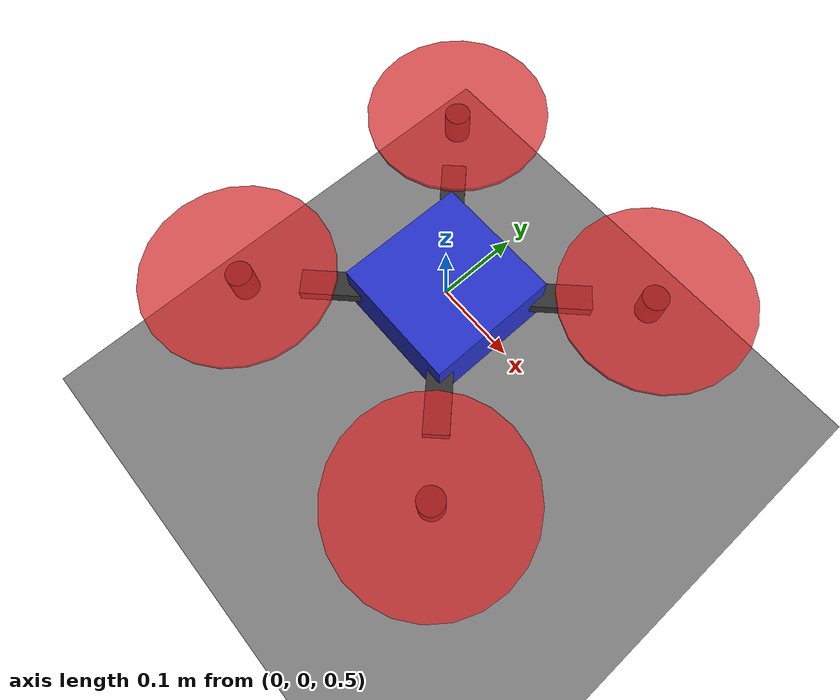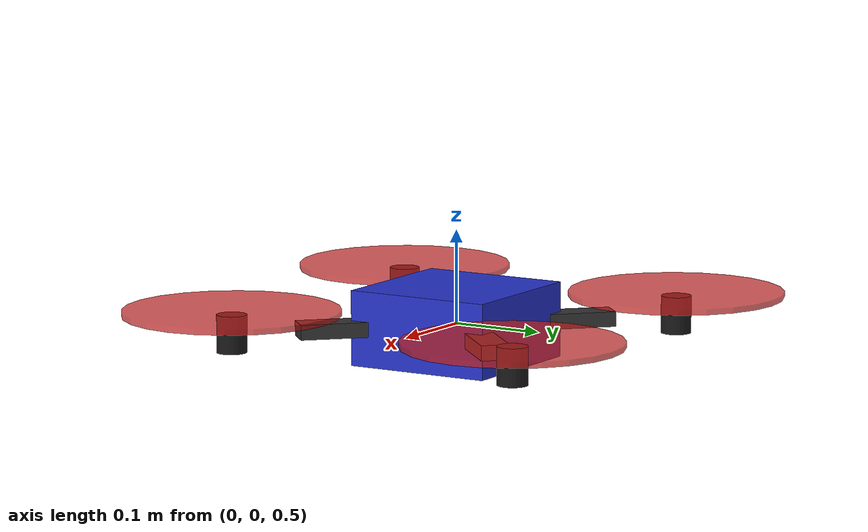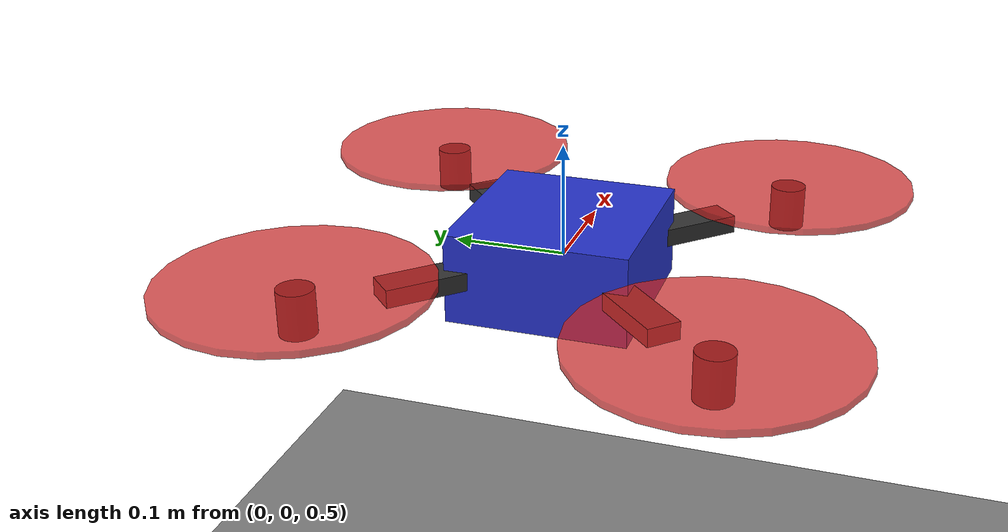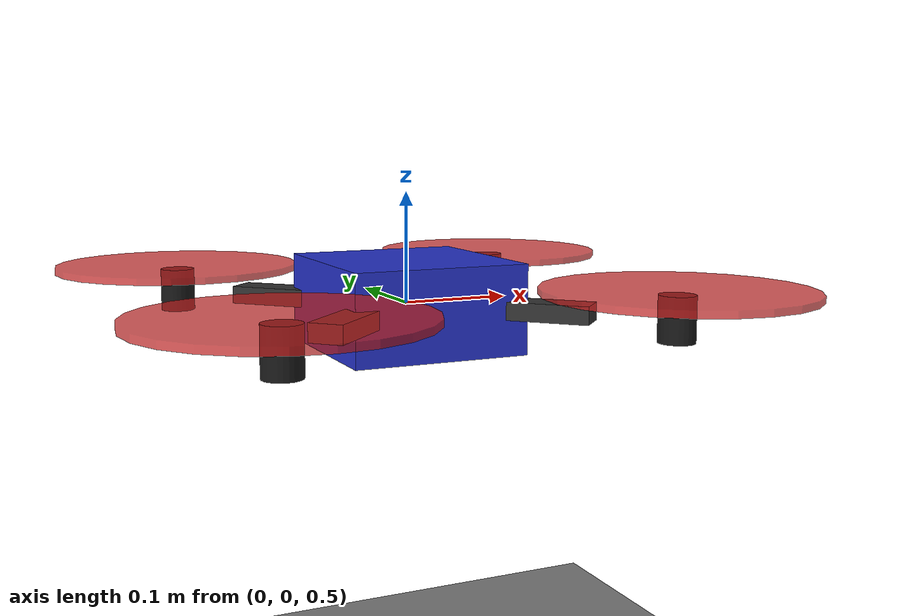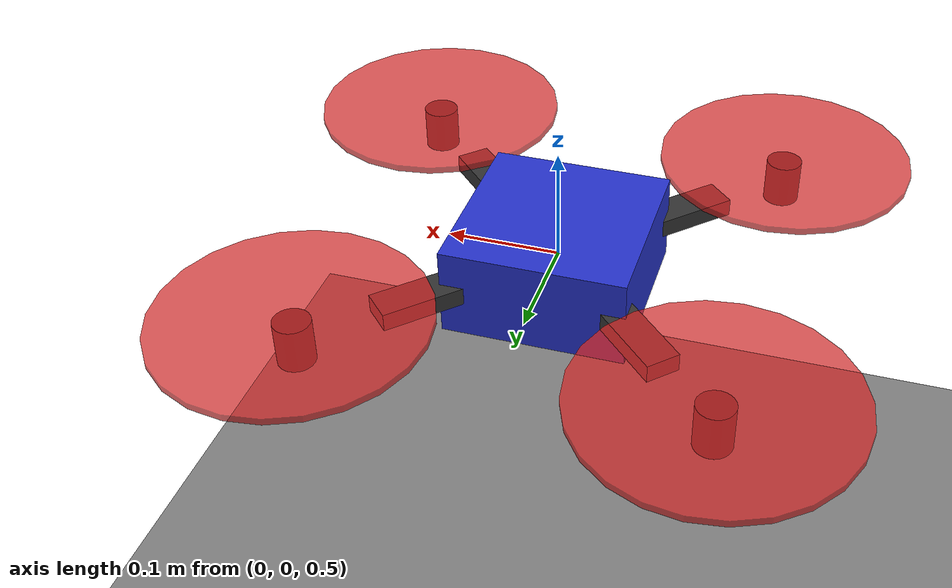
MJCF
<?xml version="1.0" ?>
<mujoco model="quadcopter">

  <!-- angle="radian": all euler/angle values in this file are in radians -->
  <compiler inertiafromgeom="auto" angle="radian"/>

  <option timestep="0.001" gravity="0 0 -9.81" integrator="RK4"/>

  <visual>
    <!-- Clean up the default scene: no contact forces, subtle shadows -->
    <headlight ambient="0.4 0.4 0.4" diffuse="0.6 0.6 0.6" specular="0.1 0.1 0.1"/>
    <map shadowclip="1" shadowscale="0.6"/>
    <quality shadowsize="2048"/>
    <global offwidth="1280" offheight="720"/>
  </visual>

  <asset>
    <!-- Simple gradient sky -->
    <texture name="skybox" type="skybox" builtin="gradient"
             rgb1="0.4 0.6 0.8" rgb2="0.8 0.9 1.0" width="512" height="512"/>
    <!-- Tiled ground -->
    <texture name="tex_ground" type="2d" builtin="checker"
             rgb1="0.45 0.45 0.45" rgb2="0.55 0.55 0.55" width="512" height="512"/>
    <material name="mat_ground" texture="tex_ground" texrepeat="8 8"
              specular="0.1" shininess="0.1" reflectance="0.0"/>
    <material name="mat_body"   rgba="0.15 0.20 0.80 1" specular="0.5" shininess="0.7"/>
    <material name="mat_arm"    rgba="0.20 0.20 0.20 1" specular="0.2"/>
    <material name="mat_motor"  rgba="0.10 0.10 0.10 1" specular="0.3"/>
    <material name="mat_rotor"  rgba="0.85 0.15 0.15 0.75" specular="0.2"/>
  </asset>

  <worldbody>
    <!-- Ground plane -->
    <geom name="ground" type="plane" size="20 20 0.1" material="mat_ground" pos="0 0 0"/>

    <body name="body" pos="0 0 0.5">
      <freejoint name="root"/>

      <!-- Central fuselage -->
      <inertial pos="0 0 0" mass="1.0" diaginertia="0.0082 0.0082 0.0149"/>
      <geom name="body_geom" type="box" size="0.08 0.08 0.04" material="mat_body"/>

      <!-- Arms (purely visual) -->
      <geom name="arm_fl_br" type="box" size="0.17 0.015 0.008" euler="0 0  0.7854" material="mat_arm"/>
      <geom name="arm_fr_bl" type="box" size="0.17 0.015 0.008" euler="0 0 -0.7854" material="mat_arm"/>

      <!-- ---- Front-Left motor + rotor ---- -->
      <body name="motor_fl" pos="-0.17 0.17 0.0">
        <inertial pos="0 0 0" mass="0.05" diaginertia="1e-4 1e-4 1e-4"/>
        <geom name="motor_fl_geom" type="cylinder" size="0.016 0.02" material="mat_motor"/>
        <!-- Rotor hinge: cosmetic spin only, driven by actuator -->
        <joint name="rotor_fl" type="hinge" axis="0 0 1" limited="false" damping="1e-4"/>
        <geom name="prop_fl" type="cylinder" size="0.115 0.003" pos="0 0 0.022" material="mat_rotor"/>
      </body>

      <!-- ---- Front-Right motor + rotor ---- -->
      <body name="motor_fr" pos="0.17 0.17 0.0">
        <inertial pos="0 0 0" mass="0.05" diaginertia="1e-4 1e-4 1e-4"/>
        <geom name="motor_fr_geom" type="cylinder" size="0.016 0.02" material="mat_motor"/>
        <joint name="rotor_fr" type="hinge" axis="0 0 1" limited="false" damping="1e-4"/>
        <geom name="prop_fr" type="cylinder" size="0.115 0.003" pos="0 0 0.022" material="mat_rotor"/>
      </body>

      <!-- ---- Back-Left motor + rotor ---- -->
      <body name="motor_bl" pos="-0.17 -0.17 0.0">
        <inertial pos="0 0 0" mass="0.05" diaginertia="1e-4 1e-4 1e-4"/>
        <geom name="motor_bl_geom" type="cylinder" size="0.016 0.02" material="mat_motor"/>
        <joint name="rotor_bl" type="hinge" axis="0 0 1" limited="false" damping="1e-4"/>
        <geom name="prop_bl" type="cylinder" size="0.115 0.003" pos="0 0 0.022" material="mat_rotor"/>
      </body>

      <!-- ---- Back-Right motor + rotor ---- -->
      <body name="motor_br" pos="0.17 -0.17 0.0">
        <inertial pos="0 0 0" mass="0.05" diaginertia="1e-4 1e-4 1e-4"/>
        <geom name="motor_br_geom" type="cylinder" size="0.016 0.02" material="mat_motor"/>
        <joint name="rotor_br" type="hinge" axis="0 0 1" limited="false" damping="1e-4"/>
        <geom name="prop_br" type="cylinder" size="0.115 0.003" pos="0 0 0.022" material="mat_rotor"/>
      </body>
    </body>
  </worldbody>

  <actuator>
    <motor name="act_fl" joint="rotor_fl" gear="0.01" ctrlrange="-1 1"/>
    <motor name="act_fr" joint="rotor_fr" gear="0.01" ctrlrange="-1 1"/>
    <motor name="act_bl" joint="rotor_bl" gear="0.01" ctrlrange="-1 1"/>
    <motor name="act_br" joint="rotor_br" gear="0.01" ctrlrange="-1 1"/>
  </actuator>

</mujoco>
